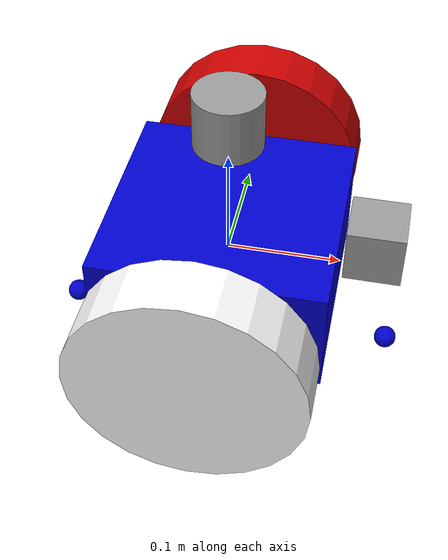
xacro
<?xml version="1.0"?>
<robot name="robot" xmlns:xacro="http://www.ros.org/wiki/xacro">

	<xacro:include filename="$(find  nav)/urdf/materials.xacro" />
	<xacro:include filename="./robot_diff.gazebo" />

	<xacro:property name="side" value="left" />
	<xacro:macro name="wheel" side="left" x="0.25" y="0.4" z="1.0" />

	<!-- //////////////  ЛИНКИ //////////////////////-->
	<link name="base_link">

		<collision name='caster_collision'>
			<origin xyz="-0.15 0.0 -0.09" rpy="0.0 0.0 0.0" />
			<geometry>
				<sphere radius="0.01" />
			</geometry>
			<surface>
				<friction>
					<ode>
						<mu>0</mu>
						<mu2>0</mu2>
						<slip1>1.0</slip1>
						<slip2>1.0</slip2>
					</ode>
				</friction>
			</surface>
		</collision>
		<visual name='caster_visual'>
			<origin xyz="-0.15 0.0 -0.09" rpy="0.0 0.0 0.0" />
			<geometry>
				<sphere radius="0.01" />
			</geometry>
			<material name="blue" />
		</visual>

		<collision name='caster_collision2'>
			<origin xyz="0.15 0.0 -0.09" rpy="0.0 0.0 0.0" />
			<geometry>
				<sphere radius="0.01" />
			</geometry>
			<surface>
				<friction>
					<ode>
						<mu>0</mu>
						<mu2>0</mu2>
						<slip1>1.0</slip1>
						<slip2>1.0</slip2>
					</ode>
				</friction>
			</surface>
		</collision>
		<visual name='caster_visual2'>
			<origin xyz="0.15 0.0 -0.09" rpy="0.0 0.0 0.0" />
			<geometry>
				<sphere radius="0.01" />
			</geometry>
			<material name="blue" />
		</visual>

		<origin xyz="0.0 0.0 0.0" rpy="0 0.0 0.0" />

		<visual name="base_visual">

			<geometry>
				<box size="0.2 0.2 0.1" />
			</geometry>

			<material name="blue" />

		</visual>

		<inertial>

			<mass value="10" />
			<inertia ixx="0.5" ixy="0" ixz="0" iyy="0.5" iyz="0" izz="0.5" />

		</inertial>

		<collision>

			<geometry>
				<box size="0.2 0.2 0.1" />
			</geometry>

		</collision>

	</link>

	<link name="wheel_left">
		<origin xyz="0.2 0 0" rpy=" 0 0 0" />
		<limit effort="100" velocity="100" />
		<joint_properties damping="0.1" friction="0.2" />
		<visual name="wheel_left_visual">

			<geometry>
				<cylinder length="0.05" radius="0.1" />
			</geometry>

			<material name="red" />

		</visual>

		<inertial>

			<mass value="1" />
			<inertia ixx="0.1" ixy="0" ixz="0" iyy="0.1" iyz="0" izz="0.1" />

		</inertial>

		<collision>

			<geometry>
				<cylinder length="0.05" radius="0.1" />
			</geometry>

		</collision>

	</link>

	<link name="wheel_right">

		<origin xyz="-2.2 0 0" rpy="0 1.57 0" />
		<limit effort="100" velocity="100" />
		<joint_properties damping="0.1" friction="0.2" />
		<visual name="wheel_left_visual">

			<geometry>

				<cylinder length="0.05" radius="0.1" />

			</geometry>

			<material name="white" />

		</visual>

		<inertial>

			<mass value="1" />
			<inertia ixx="0.1" ixy="0" ixz="0" iyy="0.1" iyz="0" izz="0.1" />

		</inertial>

		<collision>

			<geometry>
				<cylinder length="0.05" radius="0.1" />
			</geometry>

		</collision>

	</link>

	<link name="camera">
		<visual name="camera_visual">
			<origin xyz="0 0 0" rpy=" 0 0 0" />
			<geometry>
				<box size=".05 .05 .05" />
			</geometry>
			<material name="gray" />
		</visual>
	</link>

	<link name="lidar_link">
		<visual name="lidar_visual">
			<origin xyz="0 0 0" rpy=" 0 0 0" />
			<geometry>
				<cylinder length="0.05" radius="0.03" />
			</geometry>
			<material name="gray" />
		</visual>
	</link>

	<!-- //////////////  JOINTЫ //////////////////////-->
	<joint type="fixed" name="lidar_joint">
		<origin xyz="0 0 0.14" rpy="0 0 1.57" />
		<child link="lidar_link" />
		<parent link="base_link" />
	</joint>

	<joint type="fixed" name="camera_joint">
		<origin xyz="0.13 0 0.03" rpy="0 0 0" />
		<child link="camera" />
		<parent link="base_link" />
	</joint>

	<joint type="continuous" name="left_wheel_joint">

		<axis xyz="0 0 -1" />
		<origin xyz="0.0 0.15 0" rpy="1.57 0 0" />
		<child link="wheel_left" />
		<parent link="base_link" />

		<limit effort="10.0" velocity="10.0" />
		<joint_properties damping="1.0" friction="1.0"/>

	</joint>

	<joint type="continuous" name="right_wheel_joint">

		<axis xyz="0 0 -1" />
		<origin xyz="0.0 -0.15  0" rpy="1.57 0 0" />
		<child link="wheel_right" />
		<parent link="base_link" />

		<limit effort="10.0" velocity="10.0" />
		<joint_properties damping="1.0" friction="1.0"/>

	</joint>

	<!-- //////////////  ТРАНСМИССИИ?? //////////////////////-->

</robot>

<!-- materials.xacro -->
<robot>
    <material name="white">
        <color rgba="1.0 1.0 1.0 1.0" />
    </material>
    <material name="blue">
        <color rgba="0.0 0.0 0.8 1.0" />
    </material>
    <material name="green">
        <color rgba="${30/255} ${255/255} ${30/255} 1.0" />
    </material>
    <material name="red">
        <color rgba="0.8 0.0 0.0 1.0" />
    </material>
</robot>
